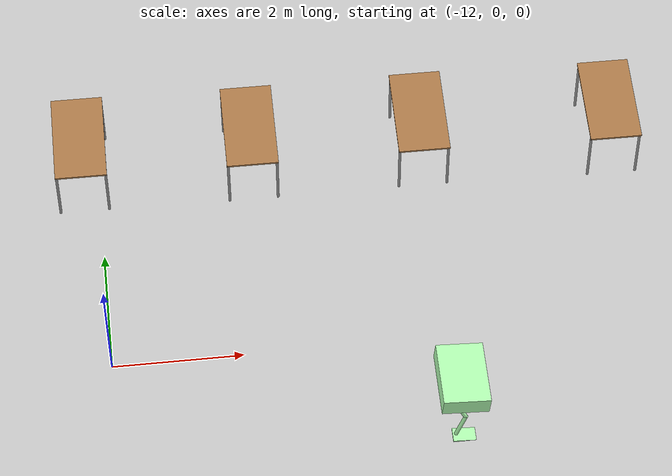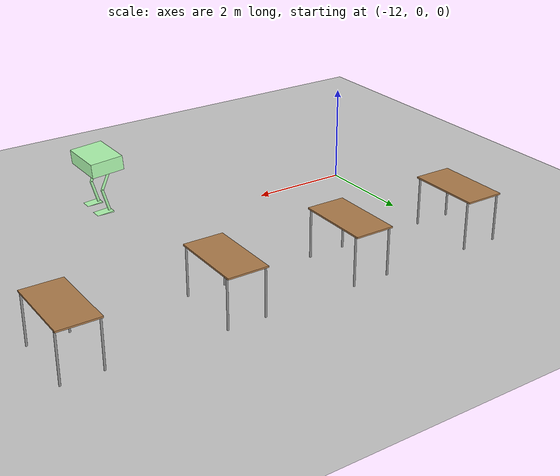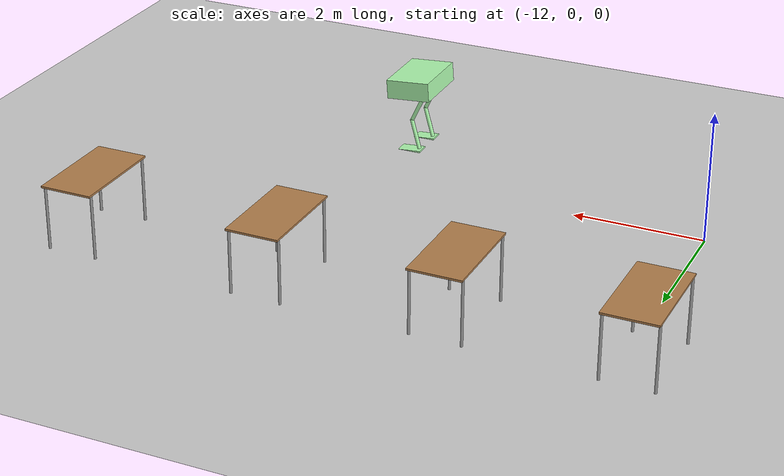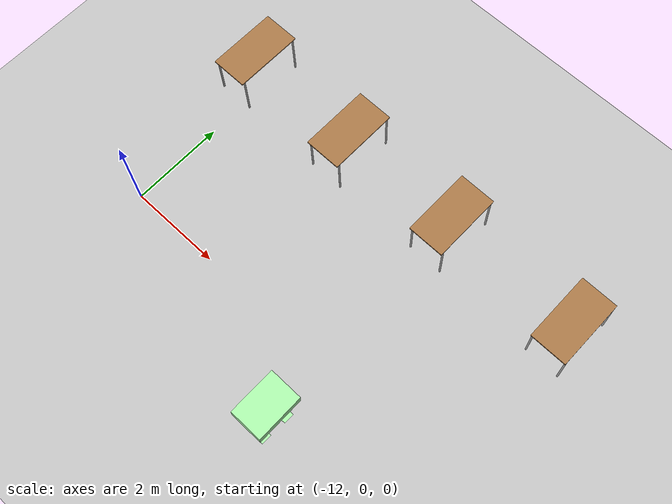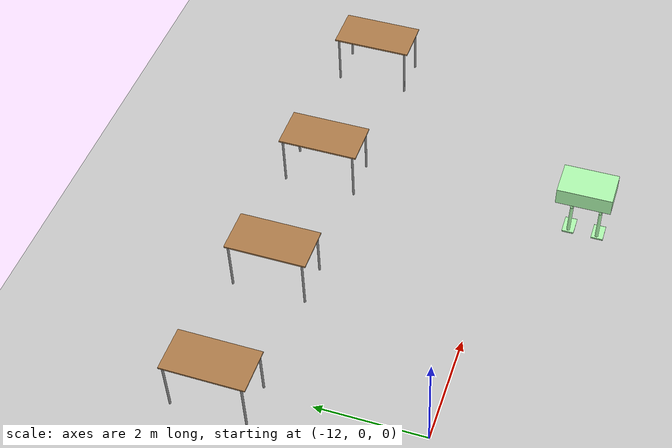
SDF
<sdf version="1.6">
 <world name="default">
  <model name="ground_plane">
   <static>1</static>
   <link name="link">
    <collision name="collision">
     <geometry><plane><normal>0 0 1</normal><size>100 100</size></plane></geometry>
     <surface>
      <contact><collide_bitmask>65535</collide_bitmask></contact>
      <friction><ode><mu>100</mu><mu2>50</mu2></ode></friction>
     </surface>
    </collision>
    <visual name="visual">
     <cast_shadows>0</cast_shadows>
     <geometry><plane><normal>0 0 1</normal><size>100 100</size></plane></geometry>
     <material>
      <script><uri>file://media/materials/scripts/gazebo.material</uri><name>Gazebo/Grey</name></script>
     </material>
    </visual>
   </link>
  </model>
  <model name="table_clone">
   <static>1</static>
   <link name="link">
    <collision name="surface">
     <pose>0 0 1 0 -0 0</pose>
     <geometry><box><size>1.5 0.8 0.03</size></box></geometry>
     <surface><friction><ode><mu>0.6</mu><mu2>0.6</mu2></ode></friction></surface>
    </collision>
    <visual name="visual1">
     <pose>0 0 1 0 -0 0</pose>
     <geometry><box><size>1.5 0.8 0.03</size></box></geometry>
     <material>
      <script><uri>file://media/materials/scripts/gazebo.material</uri><name>Gazebo/Wood</name></script>
     </material>
    </visual>
    <collision name="front_left_leg">
     <pose>0.68 0.38 0.5 0 -0 0</pose>
     <geometry><cylinder><radius>0.02</radius><length>1</length></cylinder></geometry>
    </collision>
    <visual name="front_left_leg">
     <pose>0.68 0.38 0.5 0 -0 0</pose>
     <geometry><cylinder><radius>0.02</radius><length>1</length></cylinder></geometry>
     <material>
      <script><uri>file://media/materials/scripts/gazebo.material</uri><name>Gazebo/Grey</name></script>
     </material>
    </visual>
    <collision name="front_right_leg">
     <pose>0.68 -0.38 0.5 0 -0 0</pose>
     <geometry><cylinder><radius>0.02</radius><length>1</length></cylinder></geometry>
    </collision>
    <visual name="front_right_leg">
     <pose>0.68 -0.38 0.5 0 -0 0</pose>
     <geometry><cylinder><radius>0.02</radius><length>1</length></cylinder></geometry>
     <material>
      <script><uri>file://media/materials/scripts/gazebo.material</uri><name>Gazebo/Grey</name></script>
     </material>
    </visual>
    <collision name="back_right_leg">
     <pose>-0.68 -0.38 0.5 0 -0 0</pose>
     <geometry><cylinder><radius>0.02</radius><length>1</length></cylinder></geometry>
    </collision>
    <visual name="back_right_leg">
     <pose>-0.68 -0.38 0.5 0 -0 0</pose>
     <geometry><cylinder><radius>0.02</radius><length>1</length></cylinder></geometry>
     <material>
      <script><uri>file://media/materials/scripts/gazebo.material</uri><name>Gazebo/Grey</name></script>
     </material>
    </visual>
    <collision name="back_left_leg">
     <pose>-0.68 0.38 0.5 0 -0 0</pose>
     <geometry><cylinder><radius>0.02</radius><length>1</length></cylinder></geometry>
    </collision>
    <visual name="back_left_leg">
     <pose>-0.68 0.38 0.5 0 -0 0</pose>
     <geometry><cylinder><radius>0.02</radius><length>1</length></cylinder></geometry>
     <material>
      <script><uri>file://media/materials/scripts/gazebo.material</uri><name>Gazebo/Grey</name></script>
     </material>
    </visual>
   </link>
   <pose>-3.93387 3.48733 0 0 0 -1.57545</pose>
  </model>
  <model name="table_clone_0">
   <static>1</static>
   <link name="link">
    <collision name="surface">
     <pose>0 0 1 0 -0 0</pose>
     <geometry><box><size>1.5 0.8 0.03</size></box></geometry>
     <surface><friction><ode><mu>0.6</mu><mu2>0.6</mu2></ode></friction></surface>
    </collision>
    <visual name="visual1">
     <pose>0 0 1 0 -0 0</pose>
     <geometry><box><size>1.5 0.8 0.03</size></box></geometry>
     <material>
      <script><uri>file://media/materials/scripts/gazebo.material</uri><name>Gazebo/Wood</name></script>
     </material>
    </visual>
    <collision name="front_left_leg">
     <pose>0.68 0.38 0.5 0 -0 0</pose>
     <geometry><cylinder><radius>0.02</radius><length>1</length></cylinder></geometry>
    </collision>
    <visual name="front_left_leg">
     <pose>0.68 0.38 0.5 0 -0 0</pose>
     <geometry><cylinder><radius>0.02</radius><length>1</length></cylinder></geometry>
     <material>
      <script><uri>file://media/materials/scripts/gazebo.material</uri><name>Gazebo/Grey</name></script>
     </material>
    </visual>
    <collision name="front_right_leg">
     <pose>0.68 -0.38 0.5 0 -0 0</pose>
     <geometry><cylinder><radius>0.02</radius><length>1</length></cylinder></geometry>
    </collision>
    <visual name="front_right_leg">
     <pose>0.68 -0.38 0.5 0 -0 0</pose>
     <geometry><cylinder><radius>0.02</radius><length>1</length></cylinder></geometry>
     <material>
      <script><uri>file://media/materials/scripts/gazebo.material</uri><name>Gazebo/Grey</name></script>
     </material>
    </visual>
    <collision name="back_right_leg">
     <pose>-0.68 -0.38 0.5 0 -0 0</pose>
     <geometry><cylinder><radius>0.02</radius><length>1</length></cylinder></geometry>
    </collision>
    <visual name="back_right_leg">
     <pose>-0.68 -0.38 0.5 0 -0 0</pose>
     <geometry><cylinder><radius>0.02</radius><length>1</length></cylinder></geometry>
     <material>
      <script><uri>file://media/materials/scripts/gazebo.material</uri><name>Gazebo/Grey</name></script>
     </material>
    </visual>
    <collision name="back_left_leg">
     <pose>-0.68 0.38 0.5 0 -0 0</pose>
     <geometry><cylinder><radius>0.02</radius><length>1</length></cylinder></geometry>
    </collision>
    <visual name="back_left_leg">
     <pose>-0.68 0.38 0.5 0 -0 0</pose>
     <geometry><cylinder><radius>0.02</radius><length>1</length></cylinder></geometry>
     <material>
      <script><uri>file://media/materials/scripts/gazebo.material</uri><name>Gazebo/Grey</name></script>
     </material>
    </visual>
   </link>
   <pose>-6.92257 3.55811 0 0 0 -1.57545</pose>
  </model>
  <model name="table_clone_1">
   <static>1</static>
   <link name="link">
    <collision name="surface">
     <pose>0 0 1 0 -0 0</pose>
     <geometry><box><size>1.5 0.8 0.03</size></box></geometry>
     <surface><friction><ode><mu>0.6</mu><mu2>0.6</mu2></ode></friction></surface>
    </collision>
    <visual name="visual1">
     <pose>0 0 1 0 -0 0</pose>
     <geometry><box><size>1.5 0.8 0.03</size></box></geometry>
     <material>
      <script><uri>file://media/materials/scripts/gazebo.material</uri><name>Gazebo/Wood</name></script>
     </material>
    </visual>
    <collision name="front_left_leg">
     <pose>0.68 0.38 0.5 0 -0 0</pose>
     <geometry><cylinder><radius>0.02</radius><length>1</length></cylinder></geometry>
    </collision>
    <visual name="front_left_leg">
     <pose>0.68 0.38 0.5 0 -0 0</pose>
     <geometry><cylinder><radius>0.02</radius><length>1</length></cylinder></geometry>
     <material>
      <script><uri>file://media/materials/scripts/gazebo.material</uri><name>Gazebo/Grey</name></script>
     </material>
    </visual>
    <collision name="front_right_leg">
     <pose>0.68 -0.38 0.5 0 -0 0</pose>
     <geometry><cylinder><radius>0.02</radius><length>1</length></cylinder></geometry>
    </collision>
    <visual name="front_right_leg">
     <pose>0.68 -0.38 0.5 0 -0 0</pose>
     <geometry><cylinder><radius>0.02</radius><length>1</length></cylinder></geometry>
     <material>
      <script><uri>file://media/materials/scripts/gazebo.material</uri><name>Gazebo/Grey</name></script>
     </material>
    </visual>
    <collision name="back_right_leg">
     <pose>-0.68 -0.38 0.5 0 -0 0</pose>
     <geometry><cylinder><radius>0.02</radius><length>1</length></cylinder></geometry>
    </collision>
    <visual name="back_right_leg">
     <pose>-0.68 -0.38 0.5 0 -0 0</pose>
     <geometry><cylinder><radius>0.02</radius><length>1</length></cylinder></geometry>
     <material>
      <script><uri>file://media/materials/scripts/gazebo.material</uri><name>Gazebo/Grey</name></script>
     </material>
    </visual>
    <collision name="back_left_leg">
     <pose>-0.68 0.38 0.5 0 -0 0</pose>
     <geometry><cylinder><radius>0.02</radius><length>1</length></cylinder></geometry>
    </collision>
    <visual name="back_left_leg">
     <pose>-0.68 0.38 0.5 0 -0 0</pose>
     <geometry><cylinder><radius>0.02</radius><length>1</length></cylinder></geometry>
     <material>
      <script><uri>file://media/materials/scripts/gazebo.material</uri><name>Gazebo/Grey</name></script>
     </material>
    </visual>
   </link>
   <pose>-9.59622 3.55811 0 0 0 -1.57545</pose>
  </model>
  <model name="table_clone_2">
   <static>1</static>
   <link name="link">
    <collision name="surface">
     <pose>0 0 1 0 -0 0</pose>
     <geometry><box><size>1.5 0.8 0.03</size></box></geometry>
     <surface><friction><ode><mu>0.6</mu><mu2>0.6</mu2></ode></friction></surface>
    </collision>
    <visual name="visual1">
     <pose>0 0 1 0 -0 0</pose>
     <geometry><box><size>1.5 0.8 0.03</size></box></geometry>
     <material>
      <script><uri>file://media/materials/scripts/gazebo.material</uri><name>Gazebo/Wood</name></script>
     </material>
    </visual>
    <collision name="front_left_leg">
     <pose>0.68 0.38 0.5 0 -0 0</pose>
     <geometry><cylinder><radius>0.02</radius><length>1</length></cylinder></geometry>
    </collision>
    <visual name="front_left_leg">
     <pose>0.68 0.38 0.5 0 -0 0</pose>
     <geometry><cylinder><radius>0.02</radius><length>1</length></cylinder></geometry>
     <material>
      <script><uri>file://media/materials/scripts/gazebo.material</uri><name>Gazebo/Grey</name></script>
     </material>
    </visual>
    <collision name="front_right_leg">
     <pose>0.68 -0.38 0.5 0 -0 0</pose>
     <geometry><cylinder><radius>0.02</radius><length>1</length></cylinder></geometry>
    </collision>
    <visual name="front_right_leg">
     <pose>0.68 -0.38 0.5 0 -0 0</pose>
     <geometry><cylinder><radius>0.02</radius><length>1</length></cylinder></geometry>
     <material>
      <script><uri>file://media/materials/scripts/gazebo.material</uri><name>Gazebo/Grey</name></script>
     </material>
    </visual>
    <collision name="back_right_leg">
     <pose>-0.68 -0.38 0.5 0 -0 0</pose>
     <geometry><cylinder><radius>0.02</radius><length>1</length></cylinder></geometry>
    </collision>
    <visual name="back_right_leg">
     <pose>-0.68 -0.38 0.5 0 -0 0</pose>
     <geometry><cylinder><radius>0.02</radius><length>1</length></cylinder></geometry>
     <material>
      <script><uri>file://media/materials/scripts/gazebo.material</uri><name>Gazebo/Grey</name></script>
     </material>
    </visual>
    <collision name="back_left_leg">
     <pose>-0.68 0.38 0.5 0 -0 0</pose>
     <geometry><cylinder><radius>0.02</radius><length>1</length></cylinder></geometry>
    </collision>
    <visual name="back_left_leg">
     <pose>-0.68 0.38 0.5 0 -0 0</pose>
     <geometry><cylinder><radius>0.02</radius><length>1</length></cylinder></geometry>
     <material>
      <script><uri>file://media/materials/scripts/gazebo.material</uri><name>Gazebo/Grey</name></script>
     </material>
    </visual>
   </link>
   <pose>-12.2499 3.59862 0 0 0 -1.57545</pose>
  </model>
  <model name="HumanoidRobot">
   <link name="link_0">
    <inertial>
     <mass>1</mass>
     <inertia>
      <ixx>0.166667</ixx>
      <ixy>0</ixy>
      <ixz>0</ixz>
      <iyy>0.166667</iyy>
      <iyz>0</iyz>
      <izz>0.166667</izz>
     </inertia>
    </inertial>
    <pose>-6.56825 -1.71511 1.34999 0 -0 0</pose>
    <visual name="visual">
     <geometry><box><size>0.7 1 0.3</size></box></geometry>
     <material>
      <lighting>1</lighting>
      <script><uri>file://media/materials/scripts/gazebo.material</uri><name>Gazebo/Grey</name></script>
      <shader type="vertex"><normal_map>__default__</normal_map></shader>
      <ambient>0.3 0.7 0.3 1</ambient>
      <diffuse>0.7 1 0.7 1</diffuse>
      <specular>0 0 0 1</specular>
      <emissive>0 0 0 1</emissive>
     </material>
    </visual>
    <collision name="collision">
     <geometry><box><size>0.7 1 0.3</size></box></geometry>
     <surface>
      <friction>
       <ode><mu>1</mu><mu2>1</mu2><fdir1>0 0 0</fdir1><slip1>0</slip1><slip2>0</slip2></ode>
       <torsional>
        <coefficient>1</coefficient>
        <patch_radius>0</patch_radius>
        <surface_radius>0</surface_radius>
        <use_patch_radius>1</use_patch_radius>
        <ode><slip>0</slip></ode>
       </torsional>
      </friction>
      <bounce><restitution_coefficient>0</restitution_coefficient><threshold>1e+06</threshold></bounce>
      <contact>
       <collide_without_contact>0</collide_without_contact>
       <collide_without_contact_bitmask>1</collide_without_contact_bitmask>
       <collide_bitmask>1</collide_bitmask>
       <ode>
        <soft_cfm>0</soft_cfm>
        <soft_erp>0.2</soft_erp>
        <kp>1e+13</kp>
        <kd>1</kd>
        <max_vel>0.01</max_vel>
        <min_depth>0</min_depth>
       </ode>
       <bullet>
        <split_impulse>1</split_impulse>
        <split_impulse_penetration_threshold>-0.01</split_impulse_penetration_threshold>
        <soft_cfm>0</soft_cfm>
        <soft_erp>0.2</soft_erp>
        <kp>1e+13</kp>
        <kd>1</kd>
       </bullet>
      </contact>
     </surface>
    </collision>
   </link>
   <link name="link_1_clone_0">
    <inertial>
     <mass>1</mass>
     <inertia><ixx>0.145833</ixx><ixy>0</ixy><ixz>0</ixz><iyy>0.145833</iyy><iyz>0</iyz><izz>0.125</izz></inertia>
    </inertial>
    <pose>-6.53801 -2.01511 0.521053 0 0.2 0</pose>
    <visual name="visual">
     <geometry><cylinder><radius>0.03</radius><length>0.5</length></cylinder></geometry>
     <material>
      <lighting>1</lighting>
      <script><uri>file://media/materials/scripts/gazebo.material</uri><name>Gazebo/Grey</name></script>
      <shader type="vertex"><normal_map>__default__</normal_map></shader>
      <ambient>0.3 0.7 0.3 1</ambient>
      <diffuse>0.7 1 0.7 1</diffuse>
      <specular>0 0 0 1</specular>
      <emissive>0 0 0 1</emissive>
     </material>
    </visual>
    <collision name="collision">
     <geometry><cylinder><radius>0.03</radius><length>0.5</length></cylinder></geometry>
     <surface>
      <friction>
       <ode><mu>1</mu><mu2>1</mu2><fdir1>0 0 0</fdir1><slip1>0</slip1><slip2>0</slip2></ode>
       <torsional>
        <coefficient>1</coefficient>
        <patch_radius>0</patch_radius>
        <surface_radius>0</surface_radius>
        <use_patch_radius>1</use_patch_radius>
        <ode><slip>0</slip></ode>
       </torsional>
      </friction>
      <bounce><restitution_coefficient>0</restitution_coefficient><threshold>1e+06</threshold></bounce>
      <contact>
       <collide_without_contact>0</collide_without_contact>
       <collide_without_contact_bitmask>1</collide_without_contact_bitmask>
       <collide_bitmask>1</collide_bitmask>
       <ode>
        <soft_cfm>0</soft_cfm>
        <soft_erp>0.2</soft_erp>
        <kp>1e+13</kp>
        <kd>1</kd>
        <max_vel>0.01</max_vel>
        <min_depth>0</min_depth>
       </ode>
       <bullet>
        <split_impulse>1</split_impulse>
        <split_impulse_penetration_threshold>-0.01</split_impulse_penetration_threshold>
        <soft_cfm>0</soft_cfm>
        <soft_erp>0.2</soft_erp>
        <kp>1e+13</kp>
        <kd>1</kd>
       </bullet>
      </contact>
     </surface>
    </collision>
   </link>
   <link name="link_1_clone_0_clone">
    <inertial>
     <mass>1</mass>
     <inertia><ixx>0.145833</ixx><ixy>0</ixy><ixz>0</ixz><iyy>0.145833</iyy><iyz>0</iyz><izz>0.125</izz></inertia>
    </inertial>
    <pose>-6.53415 -1.4838 0.523166 0 0.2 0</pose>
    <visual name="visual">
     <geometry><cylinder><radius>0.03</radius><length>0.5</length></cylinder></geometry>
     <material>
      <lighting>1</lighting>
      <script><uri>file://media/materials/scripts/gazebo.material</uri><name>Gazebo/Grey</name></script>
      <shader type="vertex"><normal_map>__default__</normal_map></shader>
      <ambient>0.3 0.7 0.3 1</ambient>
      <diffuse>0.7 1 0.7 1</diffuse>
      <specular>0 0 0 1</specular>
      <emissive>0 0 0 1</emissive>
     </material>
    </visual>
    <collision name="collision">
     <geometry><cylinder><radius>0.03</radius><length>0.5</length></cylinder></geometry>
     <surface>
      <friction>
       <ode><mu>1</mu><mu2>1</mu2><fdir1>0 0 0</fdir1><slip1>0</slip1><slip2>0</slip2></ode>
       <torsional>
        <coefficient>1</coefficient>
        <patch_radius>0</patch_radius>
        <surface_radius>0</surface_radius>
        <use_patch_radius>1</use_patch_radius>
        <ode><slip>0</slip></ode>
       </torsional>
      </friction>
      <bounce><restitution_coefficient>0</restitution_coefficient><threshold>1e+06</threshold></bounce>
      <contact>
       <collide_without_contact>0</collide_without_contact>
       <collide_without_contact_bitmask>1</collide_without_contact_bitmask>
       <collide_bitmask>1</collide_bitmask>
       <ode>
        <soft_cfm>0</soft_cfm>
        <soft_erp>0.2</soft_erp>
        <kp>1e+13</kp>
        <kd>1</kd>
        <max_vel>0.01</max_vel>
        <min_depth>0</min_depth>
       </ode>
       <bullet>
        <split_impulse>1</split_impulse>
        <split_impulse_penetration_threshold>-0.01</split_impulse_penetration_threshold>
        <soft_cfm>0</soft_cfm>
        <soft_erp>0.2</soft_erp>
        <kp>1e+13</kp>
        <kd>1</kd>
       </bullet>
      </contact>
     </surface>
    </collision>
   </link>
   <link name="link_1_clone_1">
    <inertial>
     <mass>1</mass>
     <inertia><ixx>0.145833</ixx><ixy>0</ixy><ixz>0</ixz><iyy>0.145833</iyy><iyz>0</iyz><izz>0.125</izz></inertia>
    </inertial>
    <pose>-6.61825 -2.01511 0.989992 0 -0.5 0</pose>
    <visual name="visual">
     <geometry><cylinder><radius>0.03</radius><length>0.5</length></cylinder></geometry>
     <material>
      <lighting>1</lighting>
      <script><uri>file://media/materials/scripts/gazebo.material</uri><name>Gazebo/Grey</name></script>
      <shader type="vertex"><normal_map>__default__</normal_map></shader>
      <ambient>0.3 0.7 0.3 1</ambient>
      <diffuse>0.7 1 0.7 1</diffuse>
      <specular>0 0 0 1</specular>
      <emissive>0 0 0 1</emissive>
     </material>
    </visual>
    <collision name="collision">
     <geometry><cylinder><radius>0.03</radius><length>0.5</length></cylinder></geometry>
     <surface>
      <friction>
       <ode><mu>1</mu><mu2>1</mu2><fdir1>0 0 0</fdir1><slip1>0</slip1><slip2>0</slip2></ode>
       <torsional>
        <coefficient>1</coefficient>
        <patch_radius>0</patch_radius>
        <surface_radius>0</surface_radius>
        <use_patch_radius>1</use_patch_radius>
        <ode><slip>0</slip></ode>
       </torsional>
      </friction>
      <bounce><restitution_coefficient>0</restitution_coefficient><threshold>1e+06</threshold></bounce>
      <contact>
       <collide_without_contact>0</collide_without_contact>
       <collide_without_contact_bitmask>1</collide_without_contact_bitmask>
       <collide_bitmask>1</collide_bitmask>
       <ode>
        <soft_cfm>0</soft_cfm>
        <soft_erp>0.2</soft_erp>
        <kp>1e+13</kp>
        <kd>1</kd>
        <max_vel>0.01</max_vel>
        <min_depth>0</min_depth>
       </ode>
       <bullet>
        <split_impulse>1</split_impulse>
        <split_impulse_penetration_threshold>-0.01</split_impulse_penetration_threshold>
        <soft_cfm>0</soft_cfm>
        <soft_erp>0.2</soft_erp>
        <kp>1e+13</kp>
        <kd>1</kd>
       </bullet>
      </contact>
     </surface>
    </collision>
   </link>
   <link name="link_1_clone_1_clone">
    <inertial>
     <mass>1</mass>
     <inertia><ixx>0.145833</ixx><ixy>0</ixy><ixz>0</ixz><iyy>0.145833</iyy><iyz>0</iyz><izz>0.125</izz></inertia>
    </inertial>
    <pose>-6.61825 -1.4838 0.989992 0 -0.5 0</pose>
    <visual name="visual">
     <geometry><cylinder><radius>0.03</radius><length>0.5</length></cylinder></geometry>
     <material>
      <lighting>1</lighting>
      <script><uri>file://media/materials/scripts/gazebo.material</uri><name>Gazebo/Grey</name></script>
      <shader type="vertex"><normal_map>__default__</normal_map></shader>
      <ambient>0.3 0.7 0.3 1</ambient>
      <diffuse>0.7 1 0.7 1</diffuse>
      <specular>0 0 0 1</specular>
      <emissive>0 0 0 1</emissive>
     </material>
    </visual>
    <collision name="collision">
     <geometry><cylinder><radius>0.03</radius><length>0.5</length></cylinder></geometry>
     <surface>
      <friction>
       <ode><mu>1</mu><mu2>1</mu2><fdir1>0 0 0</fdir1><slip1>0</slip1><slip2>0</slip2></ode>
       <torsional>
        <coefficient>1</coefficient>
        <patch_radius>0</patch_radius>
        <surface_radius>0</surface_radius>
        <use_patch_radius>1</use_patch_radius>
        <ode><slip>0</slip></ode>
       </torsional>
      </friction>
      <bounce><restitution_coefficient>0</restitution_coefficient><threshold>1e+06</threshold></bounce>
      <contact>
       <collide_without_contact>0</collide_without_contact>
       <collide_without_contact_bitmask>1</collide_without_contact_bitmask>
       <collide_bitmask>1</collide_bitmask>
       <ode>
        <soft_cfm>0</soft_cfm>
        <soft_erp>0.2</soft_erp>
        <kp>1e+13</kp>
        <kd>1</kd>
        <max_vel>0.01</max_vel>
        <min_depth>0</min_depth>
       </ode>
       <bullet>
        <split_impulse>1</split_impulse>
        <split_impulse_penetration_threshold>-0.01</split_impulse_penetration_threshold>
        <soft_cfm>0</soft_cfm>
        <soft_erp>0.2</soft_erp>
        <kp>1e+13</kp>
        <kd>1</kd>
       </bullet>
      </contact>
     </surface>
    </collision>
   </link>
   <link name="link_2">
    <inertial>
     <mass>1</mass>
     <inertia>
      <ixx>0.166667</ixx>
      <ixy>0</ixy>
      <ixz>0</ixz>
      <iyy>0.166667</iyy>
      <iyz>0</iyz>
      <izz>0.166667</izz>
     </inertia>
    </inertial>
    <pose>-6.43871 -2.03011 0.255906 0 -0 0</pose>
    <visual name="visual">
     <geometry><box><size>0.4 0.22 0.03</size></box></geometry>
     <material>
      <lighting>1</lighting>
      <script><uri>file://media/materials/scripts/gazebo.material</uri><name>Gazebo/Grey</name></script>
      <shader type="vertex"><normal_map>__default__</normal_map></shader>
      <ambient>0.3 0.7 0.3 1</ambient>
      <diffuse>0.7 1 0.7 1</diffuse>
      <specular>0 0 0 1</specular>
      <emissive>0 0 0 1</emissive>
     </material>
    </visual>
    <collision name="collision">
     <geometry><box><size>0.4 0.22 0.03</size></box></geometry>
     <surface>
      <friction>
       <ode><mu>1</mu><mu2>1</mu2><fdir1>0 0 0</fdir1><slip1>0</slip1><slip2>0</slip2></ode>
       <torsional>
        <coefficient>1</coefficient>
        <patch_radius>0</patch_radius>
        <surface_radius>0</surface_radius>
        <use_patch_radius>1</use_patch_radius>
        <ode><slip>0</slip></ode>
       </torsional>
      </friction>
      <bounce><restitution_coefficient>0</restitution_coefficient><threshold>1e+06</threshold></bounce>
      <contact>
       <collide_without_contact>0</collide_without_contact>
       <collide_without_contact_bitmask>1</collide_without_contact_bitmask>
       <collide_bitmask>1</collide_bitmask>
       <ode>
        <soft_cfm>0</soft_cfm>
        <soft_erp>0.2</soft_erp>
        <kp>1e+13</kp>
        <kd>1</kd>
        <max_vel>0.01</max_vel>
        <min_depth>0</min_depth>
       </ode>
       <bullet>
        <split_impulse>1</split_impulse>
        <split_impulse_penetration_threshold>-0.01</split_impulse_penetration_threshold>
        <soft_cfm>0</soft_cfm>
        <soft_erp>0.2</soft_erp>
        <kp>1e+13</kp>
        <kd>1</kd>
       </bullet>
      </contact>
     </surface>
    </collision>
   </link>
   <link name="link_2_clone">
    <inertial>
     <mass>1</mass>
     <inertia>
      <ixx>0.166667</ixx>
      <ixy>0</ixy>
      <ixz>0</ixz>
      <iyy>0.166667</iyy>
      <iyz>0</iyz>
      <izz>0.166667</izz>
     </inertia>
    </inertial>
    <pose>-6.43482 -1.4838 0.258149 0 -0 0</pose>
    <visual name="visual">
     <geometry><box><size>0.4 0.22 0.03</size></box></geometry>
     <material>
      <lighting>1</lighting>
      <script><uri>file://media/materials/scripts/gazebo.material</uri><name>Gazebo/Grey</name></script>
      <shader type="vertex"><normal_map>__default__</normal_map></shader>
      <ambient>0.3 0.7 0.3 1</ambient>
      <diffuse>0.7 1 0.7 1</diffuse>
      <specular>0 0 0 1</specular>
      <emissive>0 0 0 1</emissive>
     </material>
    </visual>
    <collision name="collision">
     <geometry><box><size>0.4 0.22 0.03</size></box></geometry>
     <surface>
      <friction>
       <ode><mu>1</mu><mu2>1</mu2><fdir1>0 0 0</fdir1><slip1>0</slip1><slip2>0</slip2></ode>
       <torsional>
        <coefficient>1</coefficient>
        <patch_radius>0</patch_radius>
        <surface_radius>0</surface_radius>
        <use_patch_radius>1</use_patch_radius>
        <ode><slip>0</slip></ode>
       </torsional>
      </friction>
      <bounce><restitution_coefficient>0</restitution_coefficient><threshold>1e+06</threshold></bounce>
      <contact>
       <collide_without_contact>0</collide_without_contact>
       <collide_without_contact_bitmask>1</collide_without_contact_bitmask>
       <collide_bitmask>1</collide_bitmask>
       <ode>
        <soft_cfm>0</soft_cfm>
        <soft_erp>0.2</soft_erp>
        <kp>1e+13</kp>
        <kd>1</kd>
        <max_vel>0.01</max_vel>
        <min_depth>0</min_depth>
       </ode>
       <bullet>
        <split_impulse>1</split_impulse>
        <split_impulse_penetration_threshold>-0.01</split_impulse_penetration_threshold>
        <soft_cfm>0</soft_cfm>
        <soft_erp>0.2</soft_erp>
        <kp>1e+13</kp>
        <kd>1</kd>
       </bullet>
      </contact>
     </surface>
    </collision>
   </link>
   <joint name="link_0_JOINT_0" type="revolute">
    <parent>link_0</parent>
    <child>link_1_clone_1</child>
    <pose>0 0 0.25 0 -0.5 0</pose>
    <axis>
     <xyz>0 1 0</xyz>
     <use_parent_model_frame>0</use_parent_model_frame>
     <limit><lower>-1e+16</lower><upper>1e+16</upper><effort>-1</effort><velocity>-1</velocity></limit>
     <dynamics>
      <spring_reference>0</spring_reference>
      <spring_stiffness>0</spring_stiffness>
      <damping>0</damping>
      <friction>5</friction>
     </dynamics>
    </axis>
    <physics>
     <ode><limit><cfm>0</cfm><erp>0.2</erp></limit><suspension><cfm>0</cfm><erp>0.2</erp></suspension></ode>
    </physics>
   </joint>
   <joint name="link_0_JOINT_5" type="revolute">
    <parent>link_0</parent>
    <child>link_1_clone_1_clone</child>
    <pose>0 0 0.25 0 -0.5 0</pose>
    <axis>
     <xyz>0 1 0</xyz>
     <use_parent_model_frame>0</use_parent_model_frame>
     <limit><lower>-1e+16</lower><upper>1e+16</upper><effort>-1</effort><velocity>-1</velocity></limit>
     <dynamics>
      <spring_reference>0</spring_reference>
      <spring_stiffness>0</spring_stiffness>
      <damping>0</damping>
      <friction>5</friction>
     </dynamics>
    </axis>
    <physics>
     <ode><limit><cfm>0</cfm><erp>0.2</erp></limit><suspension><cfm>0</cfm><erp>0.2</erp></suspension></ode>
    </physics>
   </joint>
   <joint name="link_1_clone_0_JOINT_4" type="revolute">
    <parent>link_1_clone_0</parent>
    <child>link_2</child>
    <pose>-0.15 0 0 0 -0 0</pose>
    <axis>
     <xyz>0 1 0</xyz>
     <use_parent_model_frame>0</use_parent_model_frame>
     <limit><lower>-1e+16</lower><upper>1e+16</upper><effort>-1</effort><velocity>-1</velocity></limit>
     <dynamics>
      <spring_reference>0</spring_reference>
      <spring_stiffness>0</spring_stiffness>
      <damping>0</damping>
      <friction>5</friction>
     </dynamics>
    </axis>
    <physics>
     <ode><limit><cfm>0</cfm><erp>0.2</erp></limit><suspension><cfm>0</cfm><erp>0.2</erp></suspension></ode>
    </physics>
   </joint>
   <joint name="link_1_clone_0_clone_JOINT_7" type="revolute">
    <parent>link_1_clone_0_clone</parent>
    <child>link_2_clone</child>
    <pose>-0.15 0 0 0 -0 0</pose>
    <axis>
     <xyz>0 1 0</xyz>
     <use_parent_model_frame>0</use_parent_model_frame>
     <limit><lower>-1e+16</lower><upper>1e+16</upper><effort>-1</effort><velocity>-1</velocity></limit>
     <dynamics>
      <spring_reference>0</spring_reference>
      <spring_stiffness>0</spring_stiffness>
      <damping>0</damping>
      <friction>5</friction>
     </dynamics>
    </axis>
    <physics>
     <ode><limit><cfm>0</cfm><erp>0.2</erp></limit><suspension><cfm>0</cfm><erp>0.2</erp></suspension></ode>
    </physics>
   </joint>
   <joint name="link_1_clone_1_JOINT_3" type="revolute">
    <parent>link_1_clone_1</parent>
    <child>link_1_clone_0</child>
    <pose>0 0 0.25 0 -0.7 0</pose>
    <axis>
     <xyz>0 1 0</xyz>
     <use_parent_model_frame>0</use_parent_model_frame>
     <limit>
      <lower>-1.79769e+308</lower>
      <upper>1.79769e+308</upper>
      <effort>-1</effort>
      <velocity>-1</velocity>
     </limit>
     <dynamics>
      <spring_reference>0</spring_reference>
      <spring_stiffness>0</spring_stiffness>
      <damping>0</damping>
      <friction>7</friction>
     </dynamics>
    </axis>
    <physics>
     <ode><limit><cfm>0</cfm><erp>0.2</erp></limit><suspension><cfm>0</cfm><erp>0.2</erp></suspension></ode>
    </physics>
   </joint>
   <joint name="link_1_clone_1_clone_JOINT_6" type="revolute">
    <parent>link_1_clone_1_clone</parent>
    <child>link_1_clone_0_clone</child>
    <pose>0 0 0.25 0 -0.7 0</pose>
    <axis>
     <xyz>0 1 0</xyz>
     <use_parent_model_frame>0</use_parent_model_frame>
     <limit>
      <lower>-1.79769e+308</lower>
      <upper>1.79769e+308</upper>
      <effort>-1</effort>
      <velocity>-1</velocity>
     </limit>
     <dynamics>
      <spring_reference>0</spring_reference>
      <spring_stiffness>0</spring_stiffness>
      <damping>0</damping>
      <friction>7</friction>
     </dynamics>
    </axis>
    <physics>
     <ode><limit><cfm>0</cfm><erp>0.2</erp></limit><suspension><cfm>0</cfm><erp>0.2</erp></suspension></ode>
    </physics>
   </joint>
   <static>0</static>
   <pose>-0.43612 0.324736 -0.746294 1e-06 0.073944 0.003176</pose>
  </model>
 </world>
</sdf>
